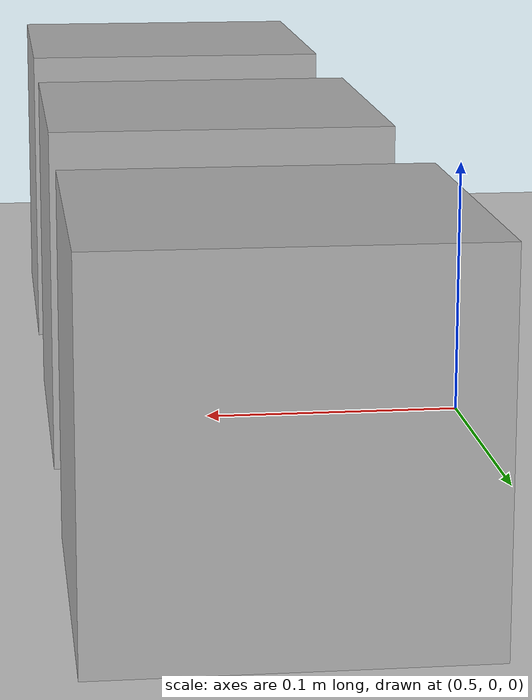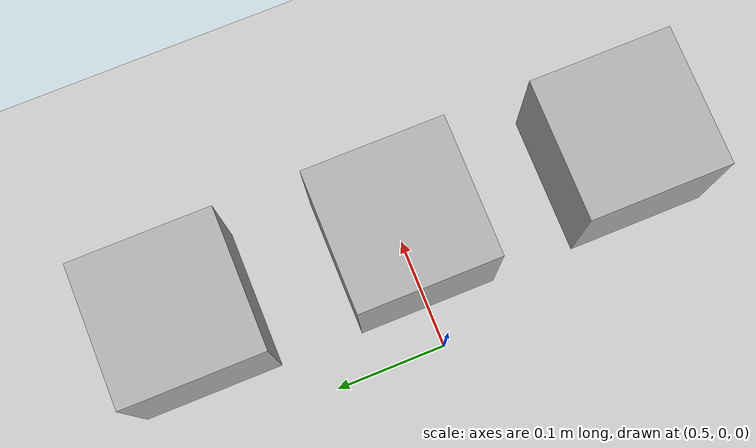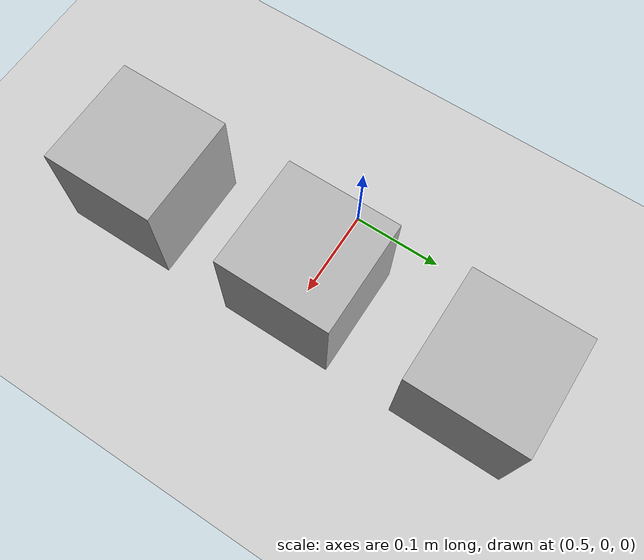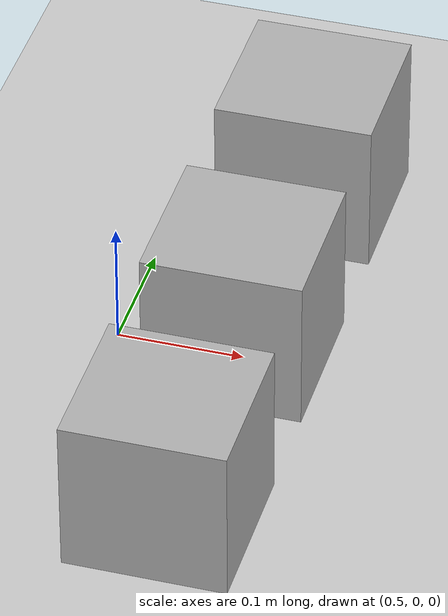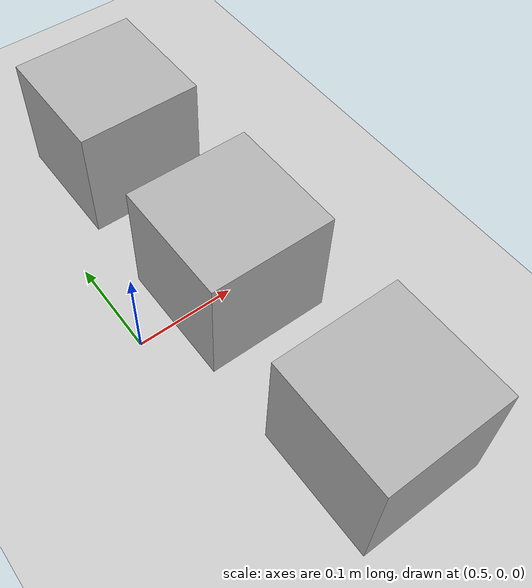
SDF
<?xml version="1.0" ?>
<sdf version="1.9">
  <world name="empty">

    <!-- Gravity and physics -->
    <gravity>0 0 -9.81</gravity>
    <physics name="high_accuracy_1ms" type="ode">
      <max_step_size>0.001</max_step_size>
      <real_time_update_rate>1000</real_time_update_rate>
      <real_time_factor>1.0</real_time_factor>
      <ode>
        <solver>
          <type>quick</type>
          <iters>100</iters>
          <sor>1.3</sor>
        </solver>
        <constraints>
          <cfm>0.0</cfm>
          <erp>0.2</erp>
          <contact_surface_layer>0.0001</contact_surface_layer>
          <contact_max_correcting_vel>0.1</contact_max_correcting_vel>
        </constraints>
      </ode>
    </physics>

    <!-- Ground plane -->
    <model name="ground_plane">
      <static>true</static>
      <link name="link">
        <collision name="collision">
          <geometry>
            <plane>
              <normal>0 0 1</normal>
              <size>100 100</size>
            </plane>
          </geometry>
        </collision>
        <visual name="visual">
          <geometry>
            <plane>
              <normal>0 0 1</normal>
              <size>100 100</size>
            </plane>
          </geometry>
          <material>
            <ambient>0.8 0.8 0.8 1</ambient>
            <diffuse>0.8 0.8 0.8 1</diffuse>
            <specular>0.8 0.8 0.8 1</specular>
          </material>
        </visual>
      </link>
    </model>

    <!-- Sun light -->
    <light type="directional" name="sun">
      <cast_shadows>true</cast_shadows>
      <pose>0 0 10 0 0 0</pose>
      <diffuse>0.8 0.8 0.8 1</diffuse>
      <specular>0.2 0.2 0.2 1</specular>
      <attenuation>
        <range>1000</range>
        <constant>0.9</constant>
        <linear>0.01</linear>
        <quadratic>0.001</quadratic>
      </attenuation>
      <direction>-0.5 0.1 -0.9</direction>
    </light>

    <!-- GUI Camera -->
    <gui fullscreen="0">
      <camera name="user_camera">
        <pose>5 -5 2 0 0.5 2.35</pose>
        <view_controller>orbit</view_controller>
      </camera>
    </gui>

    <!-- BOX 1 -->
    <model name="box1">
      <pose>0.6 0 0.0625 0 0 0</pose>

      <plugin filename="gz-sim-pose-publisher-system"
              name="gz::sim::systems::PosePublisher">
        <publish_link_pose>true</publish_link_pose>
        <publish_visual>true</publish_visual>
        <publish_model_pose>true</publish_model_pose>
        <use_pose_v_msg>true</use_pose_v_msg>
        <update_rate>30</update_rate>
      </plugin>

      <link name="box1_link">
        <inertial>
          <pose>0 0 0 0 0 0</pose>
          <mass>1.0</mass>
          <inertia>
            <ixx>0.001</ixx>
            <iyy>0.001</iyy>
            <izz>0.001</izz>
            <ixy>0</ixy>
            <ixz>0</ixz>
            <iyz>0</iyz>
          </inertia>
        </inertial>

        <collision name="collision">
          <geometry>
            <box>
              <size>0.125 0.125 0.125</size>
            </box>
          </geometry>
        </collision>

        <visual name="visual">
          <geometry>
            <box>
              <size>0.125 0.125 0.125</size>
            </box>
          </geometry>
          <material>
            <ambient>0.7 0.7 0.7 1</ambient>
            <diffuse>0.7 0.7 0.7 1</diffuse>
          </material>
        </visual>
      </link>
    </model>

    <!-- BOX 2 -->
    <model name="box2">
      <pose>0.6 0.2 0.0625 0 0 0</pose>

      <plugin filename="gz-sim-pose-publisher-system"
              name="gz::sim::systems::PosePublisher">
        <publish_link_pose>true</publish_link_pose>
        <publish_visual>true</publish_visual>
        <publish_model_pose>true</publish_model_pose>
        <use_pose_v_msg>true</use_pose_v_msg>
        <update_rate>30</update_rate>
      </plugin>

      <link name="box2_link">
        <inertial>
          <pose>0 0 0 0 0 0</pose>
          <mass>1.0</mass>
          <inertia>
            <ixx>0.001</ixx>
            <iyy>0.001</iyy>
            <izz>0.001</izz>
            <ixy>0</ixy>
            <ixz>0</ixz>
            <iyz>0</iyz>
          </inertia>
        </inertial>

        <collision name="collision">
          <geometry>
            <box>
              <size>0.125 0.125 0.125</size>
            </box>
          </geometry>
        </collision>

        <visual name="visual">
          <geometry>
            <box>
              <size>0.125 0.125 0.125</size>
            </box>
          </geometry>
          <material>
            <ambient>0.7 0.7 0.7 1</ambient>
            <diffuse>0.7 0.7 0.7 1</diffuse>
          </material>
        </visual>
      </link>
    </model>

    <!-- BOX 3 -->
    <model name="box3">
      <pose>0.6 -0.2 0.0625 0 0 0</pose>

      <plugin filename="gz-sim-pose-publisher-system"
              name="gz::sim::systems::PosePublisher">
        <publish_link_pose>true</publish_link_pose>
        <publish_visual>true</publish_visual>
        <publish_model_pose>true</publish_model_pose>
        <use_pose_v_msg>true</use_pose_v_msg>
        <update_rate>30</update_rate>
      </plugin>

      <link name="box3_link">
        <inertial>
          <pose>0 0 0 0 0 0</pose>
          <mass>1.0</mass>
          <inertia>
            <ixx>0.001</ixx>
            <iyy>0.001</iyy>
            <izz>0.001</izz>
            <ixy>0</ixy>
            <ixz>0</ixz>
            <iyz>0</iyz>
          </inertia>
        </inertial>

        <collision name="collision">
          <geometry>
            <box>
              <size>0.125 0.125 0.125</size>
            </box>
          </geometry>
        </collision>

        <visual name="visual">
          <geometry>
            <box>
              <size>0.125 0.125 0.125</size>
            </box>
          </geometry>
          <material>
            <ambient>0.7 0.7 0.7 1</ambient>
            <diffuse>0.7 0.7 0.7 1</diffuse>
          </material>
        </visual>
      </link>
    </model>

    <!-- Gazebo core systems -->
    <plugin filename="gz-sim-physics-system"
            name="gz::sim::systems::Physics"/>
    <plugin filename="gz-sim-user-commands-system"
            name="gz::sim::systems::UserCommands"/>
    <plugin filename="gz-sim-scene-broadcaster-system"
            name="gz::sim::systems::SceneBroadcaster"/>
    <plugin filename="ignition-gazebo-sensors-system"
            name="ignition::gazebo::systems::Sensors"/>
    <plugin filename="ignition-gazebo-forcetorque-system"
            name="ignition::gazebo::systems::ForceTorque"/>

  </world>
</sdf>
